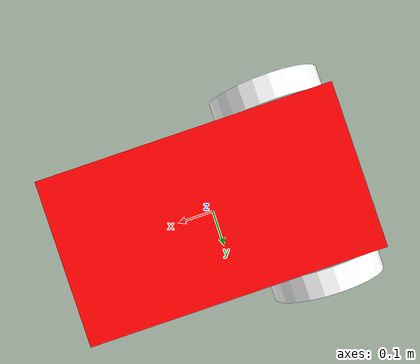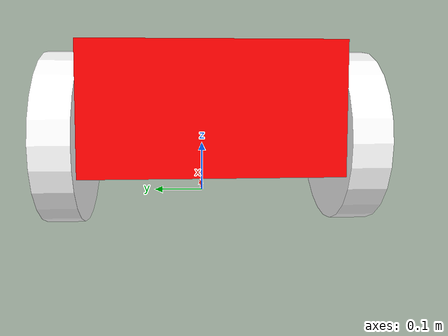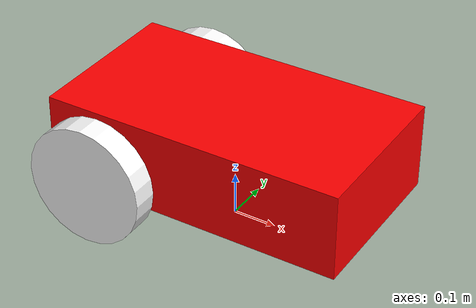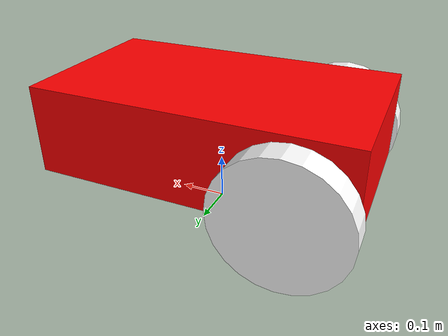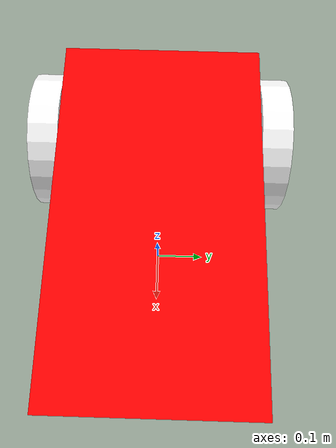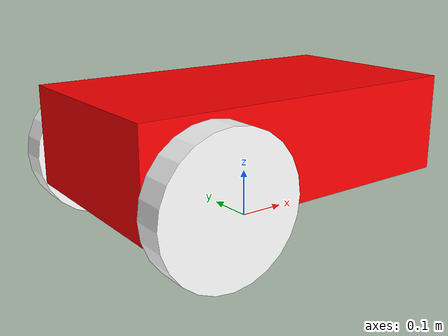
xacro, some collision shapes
<?xml version="1.0"?>

<robot name="rover" xmlns:xacro="http://www.ros.org/wiki/xacro">

    <!-- ****************** ROBOT CONSTANTS *******************************  -->
  <!-- Define the size of the robot's main chassis in meters -->
  <xacro:property name="base_width" value="0.39"/>
  <xacro:property name="base_length" value="0.70"/>
  <xacro:property name="base_height" value="0.20"/>

  <!-- Define the shape of the robot's two back wheels in meters -->
  <xacro:property name="wheel_radius" value="0.14"/>
  <xacro:property name="wheel_width" value="0.06"/>

  <!-- x-axis points forward, y-axis points to left, z-axis points upwards -->
  <!-- Define the gap between the wheel and chassis along y-axis in meters -->
  <xacro:property name="wheel_ygap" value="0.035"/>

  <!-- Position the wheels along the z-axis -->
  <xacro:property name="wheel_zoff" value="0.05"/>

  <!-- Position the wheels along the x-axis -->
  <xacro:property name="wheel_xoff" value="0.221"/>

  <!-- Position the caster wheel along the x-axis -->
  <xacro:property name="caster_xoff" value="0.217"/>

  <xacro:include filename="rover.gazebo" />
  <xacro:include filename="materials.xacro" />

  <xacro:macro name="box_inertia" params="m w h d">
    <inertial>
      <origin xyz="0 0 0" rpy="${pi/2} 0 ${pi/2}"/>
      <mass value="${m}"/>
      <inertia ixx="${(m/12) * (h*h + d*d)}" ixy="0.0" ixz="0.0" iyy="${(m/12) * (w*w + d*d)}" iyz="0.0" izz="${(m/12) * (w*w + h*h)}"/>
    </inertial>
  </xacro:macro>

  <xacro:macro name="cylinder_inertia" params="m r h">
    <inertial>
      <origin xyz="0 0 0" rpy="${pi/2} 0 0" />
      <mass value="${m}"/>
      <inertia ixx="${(m/12) * (3*r*r + h*h)}" ixy = "0" ixz = "0" iyy="${(m/12) * (3*r*r + h*h)}" iyz = "0" izz="${(m/2) * (r*r)}"/>
    </inertial>
  </xacro:macro>

  <xacro:macro name="sphere_inertia" params="m r">
    <inertial>
      <mass value="${m}"/>
      <inertia ixx="${(2/5) * m * (r*r)}" ixy="0.0" ixz="0.0" iyy="${(2/5) * m * (r*r)}" iyz="0.0" izz="${(2/5) * m * (r*r)}"/>
    </inertial>
  </xacro:macro>

  <!-- ****************** ROBOT BASE FOOTPRINT ***************************  -->
  <!-- Define the center of the main robot chassis projected on the ground -->
  <link name="base_footprint"/>

  <!-- The base footprint of the robot is located underneath the chassis -->
  <joint name="base_joint" type="fixed">
    <parent link="base_footprint"/>
    <child link="base_link" />
    <origin xyz="0.0 0.0 ${(wheel_radius+wheel_zoff)}" rpy="0 0 0"/>
  </joint>

    <link name="base_link">
    <visual>
      <origin xyz="0 0 -0.05" rpy="1.5707963267949 0 3.141592654"/>
      <geometry>

          <mesh filename="file://$(find navbot)/robot_base.stl"/>
      </geometry>
      <material name="Red">
        <color rgba="${255/255} ${0/255} ${0/255} 1.0"/>
      </material>
    </visual>

    <collision>
      <geometry>
        <box size="${base_length} ${base_width} ${base_height}"/>
      </geometry>
    </collision>

    <xacro:box_inertia m="0.05" w="${base_width}" d="${base_length}" h="${base_height}"/>

  </link>

  <!-- *********************** DRIVE WHEELS ******************************  -->

  <xacro:macro name="wheel" params="prefix x_reflect y_reflect">
    <link name="${prefix}_link">
      <visual>
        <origin xyz="0 0 0" rpy="1.5707963267949 0 0"/>
        <geometry>
            <cylinder radius="${wheel_radius}" length="${wheel_width}"/>
        </geometry>
        <material name="White">
          <color rgba="${255/255} ${255/255} ${255/255} 1.0"/>
        </material>
      </visual>

      <collision>
        <origin xyz="0 0 0" rpy="${pi/2} 0 0"/>
        <geometry>
          <cylinder radius="${wheel_radius}" length="${wheel_width}"/>
        </geometry>
      </collision>

      <xacro:cylinder_inertia m="0.05" r="${wheel_radius}" h="${wheel_width}"/>

    </link>

    <!-- Connect the wheels to the base_link at the appropriate location, and
         define a continuous joint to allow the wheels to freely rotate about
         an axis -->
    <joint name="${prefix}_joint" type="revolute">
      <parent link="base_link"/>
      <child link="${prefix}_link"/>
      <origin xyz="${x_reflect*wheel_xoff} ${y_reflect*(base_width/2+wheel_ygap)} ${-wheel_zoff}" rpy="0 0 0"/>
      <limit upper="3.1415" lower="-3.1415" effort="30" velocity="5.0"/>
      <axis xyz="0 1 0"/>
    </joint>
  </xacro:macro>

  <xacro:wheel prefix="drivewhl_l" x_reflect="-1" y_reflect="1" />
  <xacro:wheel prefix="drivewhl_r" x_reflect="-1" y_reflect="-1" />

  <!-- *********************** CASTER WHEEL ******************************  -->
  <!-- We add a caster wheel. It will be modeled as sphere.
       We define the wheel’s geometry, material and the joint to connect it to
       base_link at the appropriate location. -->
  <link name="front_caster">
    <visual>
      <geometry>
        <sphere radius="${(wheel_radius+wheel_zoff-(base_height/2))}"/>
      </geometry>
      <material name="White">
        <color rgba="${255/255} ${255/255} ${255/255} 1.0"/>
      </material>
    </visual>
    <collision>
      <origin xyz="0 0 0" rpy="0 0 0"/>
      <geometry>
        <sphere radius="${(wheel_radius+wheel_zoff-(base_height/2))}"/>
      </geometry>
    </collision>
    <xacro:sphere_inertia m="0.001" r="${(wheel_radius+wheel_zoff-(base_height/2))}"/>
  </link>

  <joint name="caster_joint" type="fixed">
    <parent link="base_link"/>
    <child link="front_caster"/>
    <origin xyz="${caster_xoff} 0.0 ${-(base_height/2)}" rpy="0 0 0"/>
  </joint>

<gazebo>
<plugin name="basic_mobile_bot_diff_drive" filename="libgazebo_ros_diff_drive.so">

    <update_rate>30</update_rate>

    <!-- wheels -->
    <left_joint>drivewhl_l_joint</left_joint>
    <right_joint>drivewhl_r_joint</right_joint>

    <!-- kinematics -->
    <wheel_separation>0.442</wheel_separation>
    <wheel_diameter>0.28</wheel_diameter>

    <!-- limits -->
    <max_wheel_torque>2000</max_wheel_torque>
    <max_wheel_acceleration>10.0</max_wheel_acceleration>

    <!-- Receive velocity commands on this ROS topic -->
    <command_topic>cmd_vel</command_topic>

    <!-- output -->
    <!-- When false, publish no wheel odometry data to a ROS topic -->
    <publish_odom>true</publish_odom>

    <!-- When true, publish coordinate transform from odom to base_footprint -->
    <!-- I usually use the robot_localization package to publish this transform -->
    <publish_odom_tf>false</publish_odom_tf>

    <!-- When true, publish coordinate transform from base_link to the wheels -->
    <!-- The robot_state_publisher package is often used to publish this transform -->
    <publish_wheel_tf>false</publish_wheel_tf>

    <odometry_topic>odom</odometry_topic>
    <odometry_frame>odom</odometry_frame>
    <robot_base_frame>base_footprint</robot_base_frame>

    <!-- Odometry source, 0 for ENCODER, 1 for WORLD, defaults to WORLD -->
    <odometry_source>0</odometry_source>
    <publishWheelJointState>true</publishWheelJointState>
    <!-- Change the ROS topic we will publish the odometry data to -->
    <ros>
      <remapping>odom:=wheel/odometry</remapping>
    </ros>

  </plugin>
  </gazebo>

</robot>
